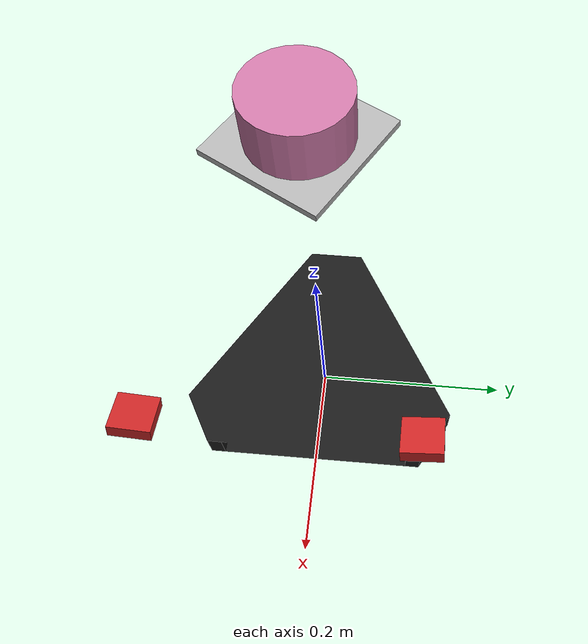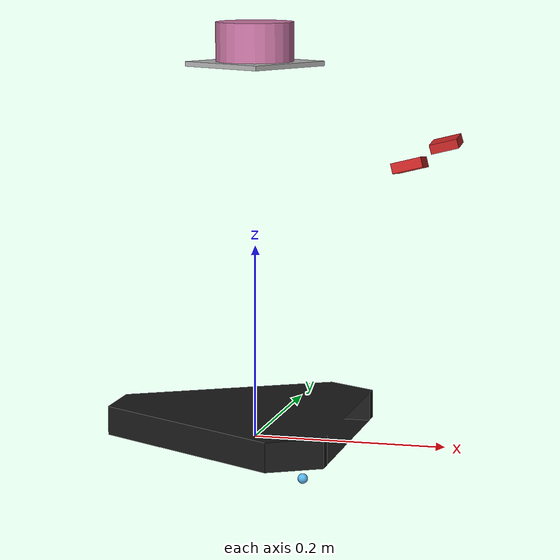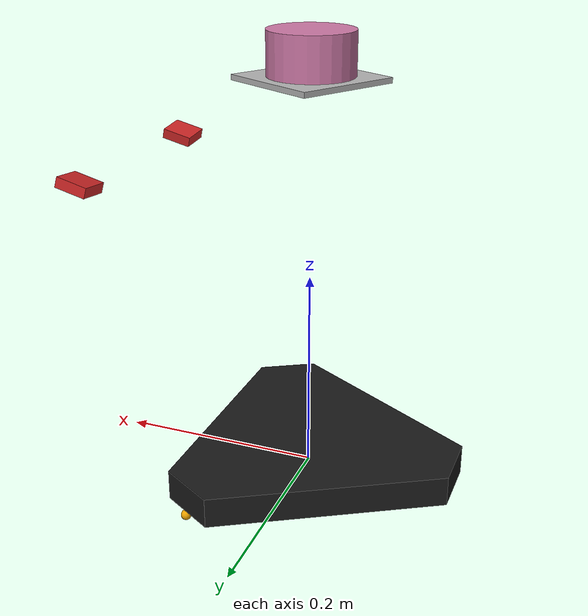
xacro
<?xml version="1.0"?>
<robot xmlns:xacro="http://www.ros.org/wiki/xacro"  name="neuro_korch">
    <xacro:include filename="robot_core.xacro"/>
    <xacro:include filename="lidar.xacro"/>
    <xacro:include filename="depth_camera.xacro"/>
</robot>

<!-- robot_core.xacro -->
<robot xmlns:xacro="http://www.ros.org/wiki/xacro" >

      <gazebo>

        <plugin name="gz::sim::systems::VelocityControl" filename="gz-sim-velocity-control-system">
        </plugin>

    </gazebo>

    <link name="caster_1">
        <collision>
            <geometry>
                <sphere radius="0.005" />
            </geometry>
            <surface>
                <friction>
                    <ode>
                    <mu>0.00001</mu>
                    <mu2>0.00001</mu2>
                    </ode>
                </friction>
             </surface>
        </collision>
        <visual>
            <geometry>
            <sphere radius="0.005" />
            </geometry>
        </visual>
    </link>

    <joint name="caster_1_joint" type="fixed">
        <parent link="base_link"/>
        <child link="caster_1"/>
        <origin xyz="0.08 0.12 -0.01"/>
    </joint>

    <link name="caster_2">
        <collision>
            <geometry>
                <sphere radius="0.005" />
            </geometry>
            <surface>
                <friction>
                    <ode>
                    <mu>0.00001</mu>
                    <mu2>0.00001</mu2>
                    </ode>
                </friction>
             </surface>
        </collision>
        <visual>
            <geometry>
            <sphere radius="0.005" />
            </geometry>
        </visual>
    </link>

    <joint name="caster_2_joint" type="fixed">
        <parent link="base_link"/>
        <child link="caster_2"/>
        <origin xyz="0.08 -0.12 -0.01"/>
    </joint>

   <link name="caster_3">
        <collision>
            <geometry>
                <sphere radius="0.005" />
            </geometry>
            <surface>
                <friction>
                    <ode>
                    <mu>0.00001</mu>
                    <mu2>0.00001</mu2>
                    </ode>
                </friction>
             </surface>
        </collision>
        <visual>
            <geometry>
            <sphere radius="0.005" />
            </geometry>
        </visual>
    </link>

    <joint name="caster_3_joint" type="fixed">
        <parent link="base_link"/>
        <child link="caster_3"/>
        <origin xyz="-0.1 0.0 -0.01"/>
    </joint>
    <material name="white">
        <color rgba="1 1 1 1" />
    </material>

    <xacro:include filename="inertial_macros.xacro"/>

    <link name="base_link"></link>

    <joint name="body_joint" type="fixed">
        <parent link="base_link"/>
        <child link="body"/>
        <origin xyz="0 0 0"/>
    </joint>

    <link name="base_footprint"></link>

    <joint name="base_footprint_joint" type="fixed">
        <parent link="base_link"/>
        <child link="base_footprint"/>
        <origin xyz="0 0 0"/>
    </joint>

    <link name="body">
        <visual>
            <origin xyz="0.1 -0.1759 0" rpy="1.57 0 1.57" />
            <geometry>
                <mesh scale="0.1 0.1 0.1" rpy="0 0 1.04" filename="file://$(find shesnar)/meshes/body2.obj"/>
            </geometry>
            <material name="">
                <color rgba="0.1 0.1 0.1 1" />
            </material>
        </visual>
        <collision>
            <origin xyz="0.1 -0.1759 0" rpy="1.57 0 1.57" />
            <geometry>
                 <mesh scale="0.1 0.1 0.1" rpy="0 0 1.04" filename="file://$(find shesnar)/meshes/body2.obj"/>

            </geometry>
        </collision>
        <xacro:inertial_cylinder mass="10.0" length="0.12" radius="0.15">
            <origin xyz="0 0 0" rpy="0 0 0"/>
        </xacro:inertial_cylinder>
    </link>

</robot>

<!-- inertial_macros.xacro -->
<robot xmlns:xacro="http://www.ros.org/wiki/xacro" >

    <!-- Specify some standard inertial calculations https://en.wikipedia.org/wiki/List_of_moments_of_inertia -->
    <!-- These make use of xacro's mathematical functionality -->

    <xacro:macro name="inertial_sphere" params="mass radius *origin">
        <inertial>
            <xacro:insert_block name="origin"/>
            <mass value="${mass}" />
            <inertia ixx="${(2/5) * mass * (radius*radius)}" ixy="0.0" ixz="0.0"
                    iyy="${(2/5) * mass * (radius*radius)}" iyz="0.0"
                    izz="${(2/5) * mass * (radius*radius)}" />
        </inertial>
    </xacro:macro>

    <xacro:macro name="inertial_box" params="mass x y z *origin">
        <inertial>
            <xacro:insert_block name="origin"/>
            <mass value="${mass}" />
            <inertia ixx="${(1/12) * mass * (y*y+z*z)}" ixy="0.0" ixz="0.0"
                    iyy="${(1/12) * mass * (x*x+z*z)}" iyz="0.0"
                    izz="${(1/12) * mass * (x*x+y*y)}" />
            </inertial>
    </xacro:macro>

    <xacro:macro name="inertial_cylinder" params="mass length radius *origin">
        <inertial>
            <xacro:insert_block name="origin"/>
            <mass value="${mass}" />
            <inertia ixx="${(1/12) * mass * (3*radius*radius + length*length)}" ixy="0.0" ixz="0.0"
                    iyy="${(1/12) * mass * (3*radius*radius + length*length)}" iyz="0.0"
                    izz="${(1/2) * mass * (radius*radius)}" />
        </inertial>
    </xacro:macro>

</robot>

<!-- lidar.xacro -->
<robot xmlns:xacro="http://www.ros.org/wiki/xacro" >
    <gazebo reference="laser_frame">
            <sensor name="laser" type="gpu_lidar">
                <pose> 0 0 0 0 0 0 </pose>
                <visualize>true</visualize>
                <update_rate>10</update_rate>
                <lidar>
                    <scan>
                        <horizontal>
                            <samples>360</samples>
                            <min_angle>-3.14</min_angle>
                            <max_angle>3.14</max_angle>
                        </horizontal>
                    </scan>
                    <range>
                        <min>0.3</min>
                        <max>12</max>
                    </range>
                </lidar>
                <topic>scan</topic>
                <gz_frame_id>laser_frame</gz_frame_id>
            </sensor>
        </gazebo>

    <joint name="laser_joint" type="fixed">
        <parent link="body"/>
        <child link="laser_frame"/>
        <origin xyz="0 0 0.41" rpy="0 3.14 0"/>
    </joint>

    <link name="laser_frame">
        <visual>
            <geometry>
                <cylinder radius="0.04" length="0.04"/>
            </geometry>
        </visual>
        <collision>
            <geometry>
                <cylinder radius="0.04" length="0.04"/>
            </geometry>
        </collision>
        <xacro:inertial_cylinder mass="0.1" length="0.04" radius="0.04">
            <origin xyz="0 0 0" rpy="0 0 0"/>
        </xacro:inertial_cylinder>
    </link>

    <link name="aruco">
        <visual>
            <geometry>
                 <mesh filename="file://$(find shesnar)/meshes/aruco_plane.obj" scale="0.5 0.5 0.5"/>
            </geometry>
        </visual>
    </link>

    <joint name="aruco_joint" type="fixed">
        <parent link="laser_frame"/>
        <child link="aruco"/>
        <origin xyz="0 0 0.0225" rpy="1.571 0 2.085"/>
    </joint>

</robot>

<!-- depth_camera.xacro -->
<robot xmlns:xacro="http://www.ros.org/wiki/xacro" >

    <!-- Left camera -->

    <joint name="camera_joint_left" type="fixed">
        <parent link="camera_pre_link_left"/>
        <child link="camera_link_left"/>
        <origin xyz="0 0 0" rpy="0.4 1.3 0.4"/>
    </joint>

    <link name="camera_link_left">
        <visual>
            <geometry>
                <box size="0.01 0.03 0.03"/>

            </geometry>
            <material name="red"/>
        </visual>
    </link>

    <joint name="camera_pre_joint_left" type="fixed">
        <parent link="body"/>
        <child link="camera_pre_link_left"/>
        <origin xyz="0.18 0.1 0.3" rpy="0 0 0"/>
    </joint>

    <link name="camera_pre_link_left">
    </link>

    <joint name="camera_optical_joint_left" type="fixed">
        <parent link="camera_link_left"/>
        <child link="camera_link_optical_left"/>
        <origin xyz="0 0 0" rpy="-1.5708 0 -1.5708"/>
    </joint>

    <link name="camera_link_optical_left"></link>

    <gazebo reference="camera_link_left">
        <material>Gazebo/Red </material>
        <sensor name="camera_left" type="depth_camera">

            <pose> 0 0 0 0 0 0 </pose>
            <visualize>true</visualize>
            <update_rate>10</update_rate>

            <camera>
                <camera_info_topic>camera/camera_info</camera_info_topic>

                <horizontal_fow>1.089</horizontal_fow>

                <image>
                    <format>B8G8R8</format>
                    <width>100</width>
                    <height>100</height>
                </image>
                <clip>
                    <near>0.1</near>
                    <far>1.5</far>
                </clip>
            </camera>
            <gz_frame_id>camera_link_left</gz_frame_id>
        </sensor>
    </gazebo>

    <!-- Right camera -->

    <joint name="camera_joint_right" type="fixed">
        <parent link="camera_pre_link_right"/>
        <child link="camera_link_right"/>
        <origin xyz="0 0 0" rpy="-0.4 1.3 -0.4"/>
    </joint>

    <link name="camera_link_right">
        <visual>
            <geometry>
                <box size="0.01 0.03 0.03"/>

            </geometry>
            <material name="red"/>
        </visual>
    </link>

    <joint name="camera_pre_joint_right" type="fixed">
        <parent link="body"/>
        <child link="camera_pre_link_right"/>
        <origin xyz="0.18 -0.1 0.3" rpy="0 0 0"/>
    </joint>

    <link name="camera_pre_link_right">
    </link>

    <joint name="camera_optical_joint_right" type="fixed">
        <parent link="camera_link_right"/>
        <child link="camera_link_optical_right"/>
        <origin xyz="0 0 0" rpy="-1.5708 0 -1.5708"/>
    </joint>

    <link name="camera_link_optical_right"></link>

    <gazebo reference="camera_link_right">
        <material>Gazebo/Red </material>
        <sensor name="camera_right" type="depth_camera">

            <pose> 0 0 0 0 0 0 </pose>
            <visualize>true</visualize>
            <update_rate>10</update_rate>

            <camera>
                <camera_info_topic>camera/camera_info</camera_info_topic>

                <horizontal_fow>1.089</horizontal_fow>

                <image>
                    <format>B8G8R8</format>
                    <width>100</width>
                    <height>100</height>
                </image>
                <clip>
                    <near>0.1</near>
                    <far>1.5</far>
                </clip>
            </camera>
            <gz_frame_id>camera_link_right</gz_frame_id>
        </sensor>

    </gazebo>

</robot>
